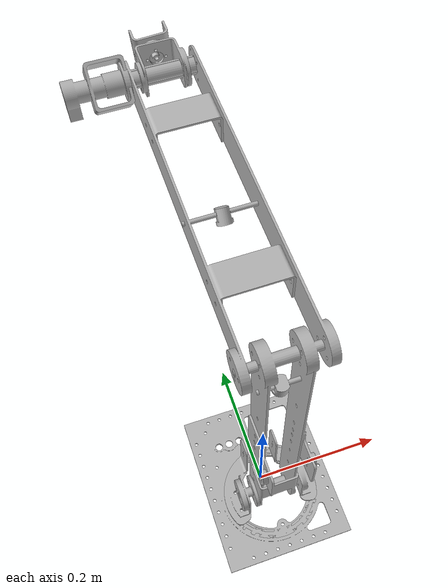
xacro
<?xml version="1.0" ?>
<robot name="arm" xmlns:xacro="http://www.ros.org/wiki/xacro">

<xacro:include filename="$(find armm_description)/urdf/materials.xacro" />
<xacro:include filename="$(find armm_description)/urdf/arm.trans" />
<xacro:include filename="$(find armm_description)/urdf/arm.gazebo" />
<link name="base_link">
  <inertial>
    <origin xyz="-0.0010063158166902576 -0.0023179609946681447 0.0025047768579964246" rpy="0 0 0"/>
    <mass value="0.8402300230207919"/>
    <inertia ixx="0.005299" iyy="0.003467" izz="0.008764" ixy="0.000215" iyz="-0.0" ixz="0.0"/>
  </inertial>
  <visual>
    <origin xyz="0 0 0" rpy="0 0 0"/>
    <geometry>
      <mesh filename="file://$(find armm_description)/meshes/base_link.stl" scale="0.001 0.001 0.001"/>
    </geometry>
    <material name="silver"/>
  </visual>
  <collision>
    <origin xyz="0 0 0" rpy="0 0 0"/>
    <geometry>
      <mesh filename="file://$(find armm_description)/meshes/base_link.stl" scale="0.001 0.001 0.001"/>
    </geometry>
  </collision>
</link>

<link name="waist_1">
  <inertial>
    <origin xyz="-7.702444876018025e-05 0.009830969674369704 0.02300113756943942" rpy="0 0 0"/>
    <mass value="0.8480827984091125"/>
    <inertia ixx="0.001213" iyy="0.002123" izz="0.002523" ixy="-7e-06" iyz="-8.3e-05" ixz="1e-06"/>
  </inertial>
  <visual>
    <origin xyz="-0.00646 0.027932 -0.005" rpy="0 0 0"/>
    <geometry>
      <mesh filename="file://$(find armm_description)/meshes/waist_1.stl" scale="0.001 0.001 0.001"/>
    </geometry>
    <material name="silver"/>
  </visual>
  <collision>
    <origin xyz="-0.00646 0.027932 -0.005" rpy="0 0 0"/>
    <geometry>
      <mesh filename="file://$(find armm_description)/meshes/waist_1.stl" scale="0.001 0.001 0.001"/>
    </geometry>
  </collision>
</link>

<link name="shoulder_1">
  <inertial>
    <origin xyz="2.8948591498393662e-05 -0.004074156190009087 0.23288965236006828" rpy="0 0 0"/>
    <mass value="2.3356160941174426"/>
    <inertia ixx="0.059486" iyy="0.060319" izz="0.002265" ixy="-7e-06" iyz="-0.000522" ixz="5e-06"/>
  </inertial>
  <visual>
    <origin xyz="-0.006461 0.027932 -0.0405" rpy="0 0 0"/>
    <geometry>
      <mesh filename="file://$(find armm_description)/meshes/shoulder_1.stl" scale="0.001 0.001 0.001"/>
    </geometry>
    <material name="silver"/>
  </visual>
  <collision>
    <origin xyz="-0.006461 0.027932 -0.0405" rpy="0 0 0"/>
    <geometry>
      <mesh filename="file://$(find armm_description)/meshes/shoulder_1.stl" scale="0.001 0.001 0.001"/>
    </geometry>
  </collision>
</link>

<link name="forearm_1">
  <inertial>
    <origin xyz="-0.0047246620557192965 0.22397119357725606 0.002083108957369073" rpy="0 0 0"/>
    <mass value="1.9893346240282717"/>
    <inertia ixx="0.050345" iyy="0.004096" izz="0.053666" ixy="0.001691" iyz="-0.000192" ixz="-1e-06"/>
  </inertial>
  <visual>
    <origin xyz="-0.006462 0.028078 -0.4905" rpy="0 0 0"/>
    <geometry>
      <mesh filename="file://$(find armm_description)/meshes/forearm_1.stl" scale="0.001 0.001 0.001"/>
    </geometry>
    <material name="silver"/>
  </visual>
  <collision>
    <origin xyz="-0.006462 0.028078 -0.4905" rpy="0 0 0"/>
    <geometry>
      <mesh filename="file://$(find armm_description)/meshes/forearm_1.stl" scale="0.001 0.001 0.001"/>
    </geometry>
  </collision>
</link>

<link name="wrist_1_1">
  <inertial>
    <origin xyz="-0.06568494427723634 0.001506419448577545 -0.0013244463243618498" rpy="0 0 0"/>
    <mass value="1.139710997448956"/>
    <inertia ixx="0.000461" iyy="0.002977" izz="0.002995" ixy="-0.00018" iyz="-6.2e-05" ixz="-8.6e-05"/>
  </inertial>
  <visual>
    <origin xyz="-0.002883 -0.421905 -0.492176" rpy="0 0 0"/>
    <geometry>
      <mesh filename="file://$(find armm_description)/meshes/wrist_1_1.stl" scale="0.001 0.001 0.001"/>
    </geometry>
    <material name="silver"/>
  </visual>
  <collision>
    <origin xyz="-0.002883 -0.421905 -0.492176" rpy="0 0 0"/>
    <geometry>
      <mesh filename="file://$(find armm_description)/meshes/wrist_1_1.stl" scale="0.001 0.001 0.001"/>
    </geometry>
  </collision>
</link>

<link name="wrist_2_1">
  <inertial>
    <origin xyz="-0.0001378319350452636 0.017225594312011316 -0.00031580323993046777" rpy="0 0 0"/>
    <mass value="0.1496451428941353"/>
    <inertia ixx="3.6e-05" iyy="6.6e-05" izz="5e-05" ixy="-0.0" iyz="-0.0" ixz="-1e-06"/>
  </inertial>
  <visual>
    <origin xyz="-0.002645 -0.451898 -0.491615" rpy="0 0 0"/>
    <geometry>
      <mesh filename="file://$(find armm_description)/meshes/wrist_2_1.stl" scale="0.001 0.001 0.001"/>
    </geometry>
    <material name="silver"/>
  </visual>
  <collision>
    <origin xyz="-0.002645 -0.451898 -0.491615" rpy="0 0 0"/>
    <geometry>
      <mesh filename="file://$(find armm_description)/meshes/wrist_2_1.stl" scale="0.001 0.001 0.001"/>
    </geometry>
  </collision>
</link>

<joint name="turret_joint" type="continuous">
  <origin xyz="0.00646 -0.027932 0.005" rpy="0 0 0"/>
  <parent link="base_link"/>
  <child link="waist_1"/>
  <axis xyz="0.0 0.0 1.0"/>
</joint>

<joint name="shoulder_joint" type="continuous">
  <origin xyz="1e-06 0.0 0.0355" rpy="0 0 0"/>
  <parent link="waist_1"/>
  <child link="shoulder_1"/>
  <axis xyz="0.999968 0.007954 0.0"/>
</joint>

<joint name="elbow_joint" type="continuous">
  <origin xyz="1e-06 -0.000146 0.45" rpy="0 0 0"/>
  <parent link="shoulder_1"/>
  <child link="forearm_1"/>
  <axis xyz="-0.999968 -0.007954 -0.0"/>
</joint>

<joint name="wrist_pitch" type="continuous">
  <origin xyz="-0.003579 0.449983 0.001676" rpy="0 0 0"/>
  <parent link="forearm_1"/>
  <child link="wrist_1_1"/>
  <axis xyz="-0.999968 -0.007954 -0.0"/>
</joint>

<joint name="wrist_roll" type="continuous">
  <origin xyz="-0.000238 0.029993 -0.000561" rpy="0 0 0"/>
  <parent link="wrist_1_1"/>
  <child link="wrist_2_1"/>
  <axis xyz="-0.007952 0.999793 -0.018724"/>
</joint>

</robot>

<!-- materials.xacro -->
<robot name="kartikeya" xmlns:xacro="http://www.ros.org/wiki/xacro" >

<material name="silver">
  <color rgba="0.700 0.700 0.700 1.000"/>
</material>

</robot>

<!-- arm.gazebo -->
<robot name="arm" xmlns:xacro="http://www.ros.org/wiki/xacro" >

<xacro:property name="body_color" value="Gazebo/Silver" />

<gazebo>
  <plugin name="control" filename="libgazebo_ros_control.so"/>
</gazebo>
<gazebo reference="base_link">
  <material>${body_color}</material>
  <mu1>0.2</mu1>
  <mu2>0.2</mu2>
  <self_collide>true</self_collide>
  <gravity>true</gravity>
</gazebo>

<gazebo reference="waist_1">
  <material>${body_color}</material>
  <mu1>0.2</mu1>
  <mu2>0.2</mu2>
  <self_collide>true</self_collide>
</gazebo>

<gazebo reference="shoulder_1">
  <material>${body_color}</material>
  <mu1>0.2</mu1>
  <mu2>0.2</mu2>
  <self_collide>true</self_collide>
</gazebo>

<gazebo reference="forearm_1">
  <material>${body_color}</material>
  <mu1>0.2</mu1>
  <mu2>0.2</mu2>
  <self_collide>true</self_collide>
</gazebo>

<gazebo reference="wrist_1_1">
  <material>${body_color}</material>
  <mu1>0.2</mu1>
  <mu2>0.2</mu2>
  <self_collide>true</self_collide>
</gazebo>

<gazebo reference="wrist_2_1">
  <material>${body_color}</material>
  <mu1>0.2</mu1>
  <mu2>0.2</mu2>
  <self_collide>true</self_collide>
</gazebo>

</robot>
